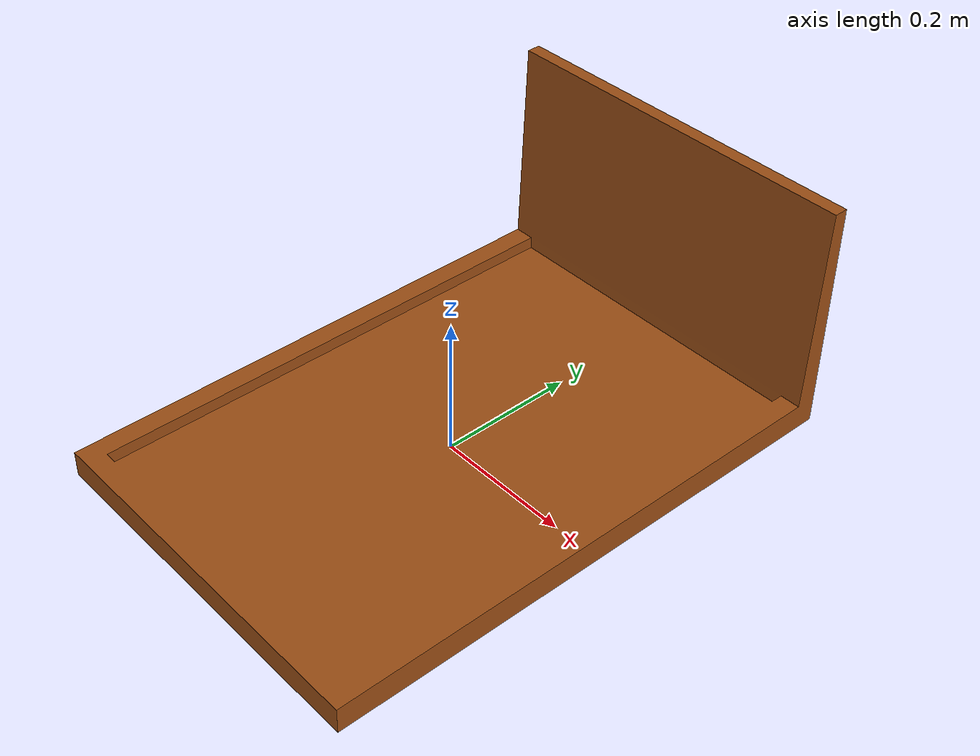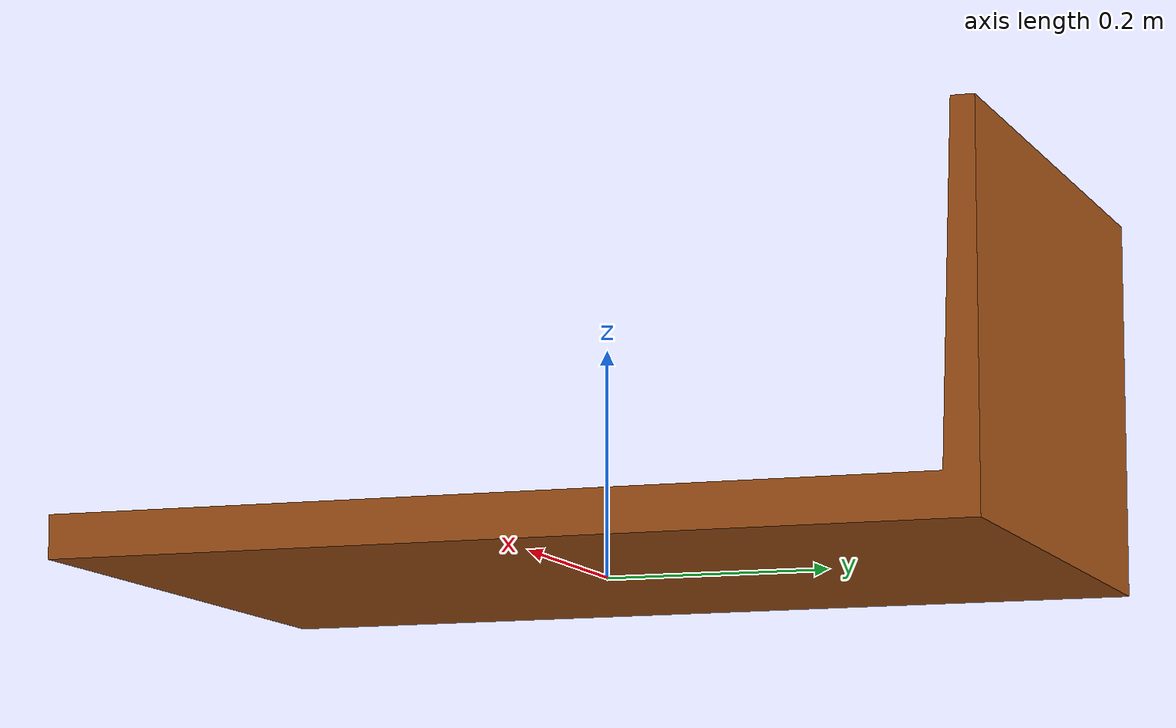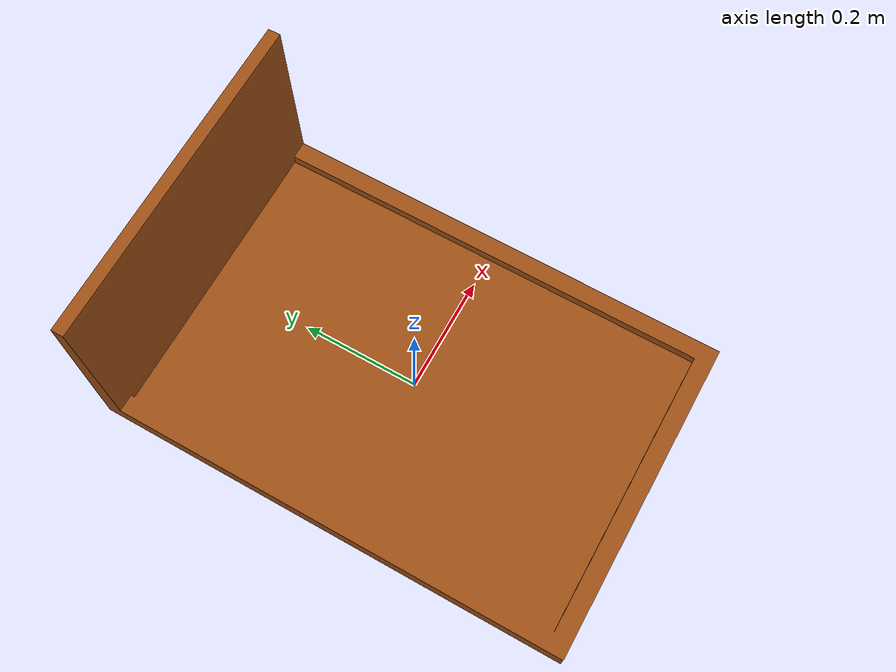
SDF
<?xml version='1.0'?>
<sdf version="1.4">
  <model name="BedFrame">
    <static>false</static>
    <link name="link">
      <!-- Random Inertia and Mass -->
      <inertial>
        <mass>1.0</mass>
        <inertia>
          <!-- inertias are tricky to compute -->
          <!-- http://gazebosim.org/tutorials?tut=inertia&cat=build_robot -->
          <ixx>0.083</ixx> <!-- for a box: ixx = 0.083 * mass * (y*y + z*z) -->
          <ixy>0.0</ixy> <!-- for a box: ixy = 0 -->
          <ixz>0.0</ixz> <!-- for a box: ixz = 0 -->
          <iyy>0.083</iyy> <!-- for a box: iyy = 0.083 * mass * (x*x + z*z) -->
          <iyz>0.0</iyz> <!-- for a box: iyz = 0 -->
          <izz>0.083</izz> <!-- for a box: izz = 0.083 * mass * (x*x + y*y) -->
        </inertia>
      </inertial>
      <collision name="body">
        <pose>0 0 0.00 0 0 0</pose>
        <geometry>
          <mesh>
            <uri>model://bedframe/meshes/bedframe.stl</uri>
            <scale> 0.001 0.001 0.001</scale>
          </mesh>
        </geometry>
      </collision>
      <visual name="body">
        <pose>0 0 0 0 0 0</pose>
        <geometry>
          <mesh>
            <uri>model://bedframe/meshes/bedframe.stl</uri>
            <scale> 0.001 0.001 0.001</scale>
          </mesh>
        </geometry>
        <material>
          <ambient>0.617 0.31 0.084 1</ambient>
          <diffuse>0.617 0.31 0.084 1</diffuse>
          <specular>0.1 0.1 0.1 1</specular>
          <emissive>0 0 0 0</emissive>
        </material>
      </visual>

      <sensor name='my_contact' type='contact'>
        <contact>
          <collision>box_collision</collision>
        </contact>
      </sensor>

    </link>
  </model>
</sdf>
